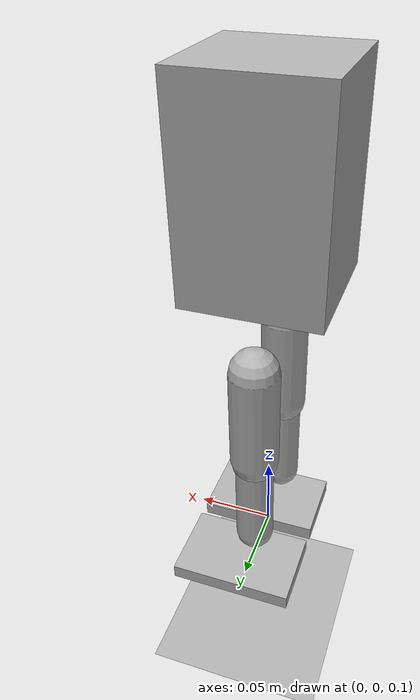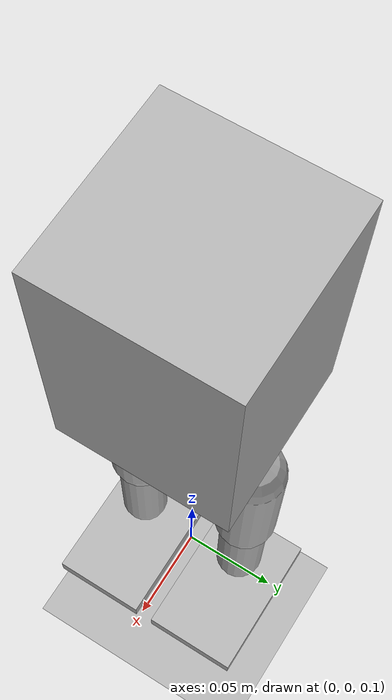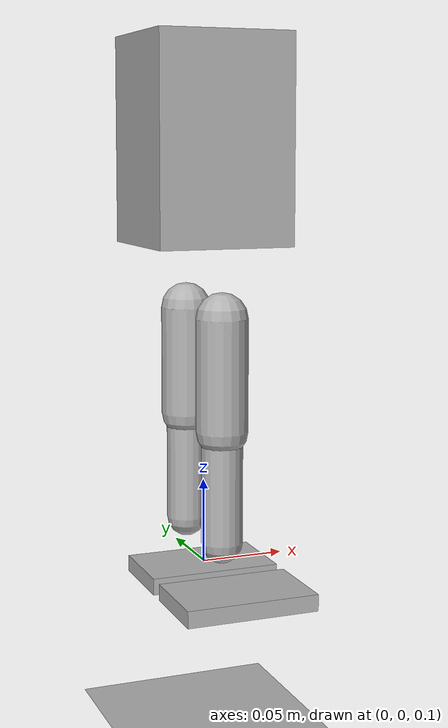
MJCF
<mujoco model="servo_biped">
  <compiler angle="radian" autolimits="true"/>

  <option timestep="0.002" gravity="0 0 -9.81" integrator="implicit">
    <flag contact="enable"/>
  </option>

  <default>
    <!-- Default geom properties -->
    <geom rgba="0.7 0.7 0.7 1" condim="4" friction="1.0 0.005 0.0001"/>

    <!-- Servo actuator defaults: position control with limited kp -->
    <position kp="50" ctrlrange="-1.57 1.57" forcerange="-2.5 2.5"/>

    <!-- Joint defaults -->
    <joint damping="0.5" armature="0.01"/>
  </default>

  <asset>
    <texture type="skybox" builtin="gradient" rgb1="0.3 0.5 0.7" rgb2="0 0 0" width="512" height="512"/>
    <texture name="grid" type="2d" builtin="checker" rgb1="0.2 0.3 0.4" rgb2="0.3 0.4 0.5" width="512" height="512"/>
    <material name="grid" texture="grid" texrepeat="8 8" reflectance="0.2"/>
    <material name="body_mat" rgba="0.3 0.3 0.8 1"/>
    <material name="leg_mat" rgba="0.5 0.5 0.5 1"/>
    <material name="foot_mat" rgba="0.2 0.2 0.2 1"/>
  </asset>

  <worldbody>
    <!-- Ground plane -->
    <geom name="floor" type="plane" size="5 5 0.1" material="grid"/>
    <light pos="0 0 3" dir="0 0 -1" diffuse="0.8 0.8 0.8"/>
    <light pos="1 1 3" dir="-0.5 -0.5 -1" diffuse="0.6 0.6 0.6"/>

    <!-- ===== Robot Body ===== -->
    <!-- Free joint allows the robot to move freely in space -->
    <body name="torso" pos="0 0 0.35">
      <freejoint name="root"/>
      <inertial pos="0 0 0" mass="1.24" diaginertia="0.005 0.005 0.002"/>

      <!-- Torso geometry -->
      <geom name="torso_geom" type="box" size="0.04 0.04 0.06" material="body_mat"/>

      <!-- IMU sensor site (on torso) -->
      <site name="imu_site" pos="0 0 0.03" size="0.005"/>

      <!-- ===== RIGHT LEG ===== -->
      <body name="r_hip_yaw" pos="0 -0.03 -0.06">
        <!-- K0: Hip Pitch -->
        <joint name="r_hip_pitch" type="hinge" axis="0 1 0" range="-1.2 1.2"/>

        <body name="r_hip_roll" pos="0 0 -0.04">
          <!-- K1: Hip Roll -->
          <joint name="r_hip_roll" type="hinge" axis="1 0 0" range="-0.6 0.6"/>
          <inertial pos="0 0 -0.0325" mass="0.08" diaginertia="0.0001 0.0001 0.00005"/>

          <!-- Thigh geometry (65mm) -->
          <geom name="r_thigh" type="capsule" fromto="0 0 0 0 0 -0.065" size="0.015" material="leg_mat"/>

          <body name="r_knee" pos="0 0 -0.065">
            <!-- H: Knee -->
            <joint name="r_knee" type="hinge" axis="0 1 0" range="0 2.4"/>
            <inertial pos="0 0 -0.0325" mass="0.04" diaginertia="0.00005 0.00005 0.00002"/>

            <!-- Shin geometry (65mm) -->
            <geom name="r_shin" type="capsule" fromto="0 0 0 0 0 -0.065" size="0.012" material="leg_mat"/>

            <body name="r_ankle_pitch" pos="0 0 -0.065">
              <!-- A0: Ankle Pitch -->
              <joint name="r_ankle_pitch" type="hinge" axis="0 1 0" range="-1.2 1.2"/>

              <body name="r_ankle_roll" pos="0 0 -0.0245">
                <!-- A1: Ankle Roll -->
                <joint name="r_ankle_roll" type="hinge" axis="1 0 0" range="-0.6 0.6"/>
                <inertial pos="0 0 -0.01" mass="0.01" diaginertia="0.00001 0.00002 0.00002"/>

                <!-- Foot geometry -->
                <geom name="r_foot" type="box" size="0.04 0.025 0.005" pos="0.01 0 -0.01" material="foot_mat"/>

                <!-- Contact sensors -->
                <site name="r_foot_front" pos="0.03 0 -0.015" size="0.005"/>
                <site name="r_foot_back" pos="-0.01 0 -0.015" size="0.005"/>
              </body>
            </body>
          </body>
        </body>
      </body>

      <!-- ===== LEFT LEG ===== -->
      <body name="l_hip_yaw" pos="0 0.03 -0.06">
        <!-- K0: Hip Pitch -->
        <joint name="l_hip_pitch" type="hinge" axis="0 1 0" range="-1.2 1.2"/>

        <body name="l_hip_roll" pos="0 0 -0.04">
          <!-- K1: Hip Roll -->
          <joint name="l_hip_roll" type="hinge" axis="1 0 0" range="-0.6 0.6"/>
          <inertial pos="0 0 -0.0325" mass="0.08" diaginertia="0.0001 0.0001 0.00005"/>

          <!-- Thigh geometry (65mm) -->
          <geom name="l_thigh" type="capsule" fromto="0 0 0 0 0 -0.065" size="0.015" material="leg_mat"/>

          <body name="l_knee" pos="0 0 -0.065">
            <!-- H: Knee -->
            <joint name="l_knee" type="hinge" axis="0 1 0" range="0 2.4"/>
            <inertial pos="0 0 -0.0325" mass="0.04" diaginertia="0.00005 0.00005 0.00002"/>

            <!-- Shin geometry (65mm) -->
            <geom name="l_shin" type="capsule" fromto="0 0 0 0 0 -0.065" size="0.012" material="leg_mat"/>

            <body name="l_ankle_pitch" pos="0 0 -0.065">
              <!-- A0: Ankle Pitch -->
              <joint name="l_ankle_pitch" type="hinge" axis="0 1 0" range="-1.2 1.2"/>

              <body name="l_ankle_roll" pos="0 0 -0.0245">
                <!-- A1: Ankle Roll -->
                <joint name="l_ankle_roll" type="hinge" axis="1 0 0" range="-0.6 0.6"/>
                <inertial pos="0 0 -0.01" mass="0.01" diaginertia="0.00001 0.00002 0.00002"/>

                <!-- Foot geometry -->
                <geom name="l_foot" type="box" size="0.04 0.025 0.005" pos="0.01 0 -0.01" material="foot_mat"/>

                <!-- Contact sensors -->
                <site name="l_foot_front" pos="0.03 0 -0.015" size="0.005"/>
                <site name="l_foot_back" pos="-0.01 0 -0.015" size="0.005"/>
              </body>
            </body>
          </body>
        </body>
      </body>
    </body>
  </worldbody>

  <!-- ===== ACTUATORS (Position Servos) ===== -->
  <actuator>
    <!-- Right leg (5 DOF) -->
    <position name="r_hip_pitch_servo"   joint="r_hip_pitch"   kp="50" forcerange="-2.5 2.5"/>
    <position name="r_hip_roll_servo"    joint="r_hip_roll"    kp="50" forcerange="-2.5 2.5"/>
    <position name="r_knee_servo"        joint="r_knee"        kp="60" forcerange="-3.0 3.0"/>
    <position name="r_ankle_pitch_servo" joint="r_ankle_pitch" kp="50" forcerange="-2.5 2.5"/>
    <position name="r_ankle_roll_servo"  joint="r_ankle_roll"  kp="50" forcerange="-2.5 2.5"/>

    <!-- Left leg (5 DOF) -->
    <position name="l_hip_pitch_servo"   joint="l_hip_pitch"   kp="50" forcerange="-2.5 2.5"/>
    <position name="l_hip_roll_servo"    joint="l_hip_roll"    kp="50" forcerange="-2.5 2.5"/>
    <position name="l_knee_servo"        joint="l_knee"        kp="60" forcerange="-3.0 3.0"/>
    <position name="l_ankle_pitch_servo" joint="l_ankle_pitch" kp="50" forcerange="-2.5 2.5"/>
    <position name="l_ankle_roll_servo"  joint="l_ankle_roll"  kp="50" forcerange="-2.5 2.5"/>
  </actuator>

  <!-- ===== SENSORS ===== -->
  <sensor>
    <!-- IMU sensors on torso -->
    <gyro name="imu_gyro" site="imu_site"/>
    <accelerometer name="imu_accel" site="imu_site"/>
    <framequat name="imu_quat" objtype="site" objname="imu_site"/>

    <!-- Foot contact force sensors -->
    <touch name="r_foot_front_touch" site="r_foot_front"/>
    <touch name="r_foot_back_touch" site="r_foot_back"/>
    <touch name="l_foot_front_touch" site="l_foot_front"/>
    <touch name="l_foot_back_touch" site="l_foot_back"/>
  </sensor>
</mujoco>
